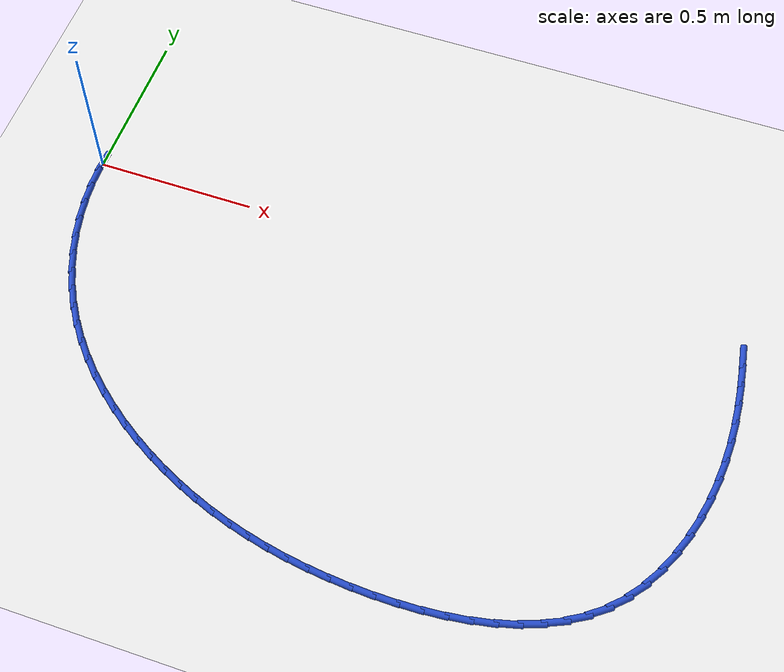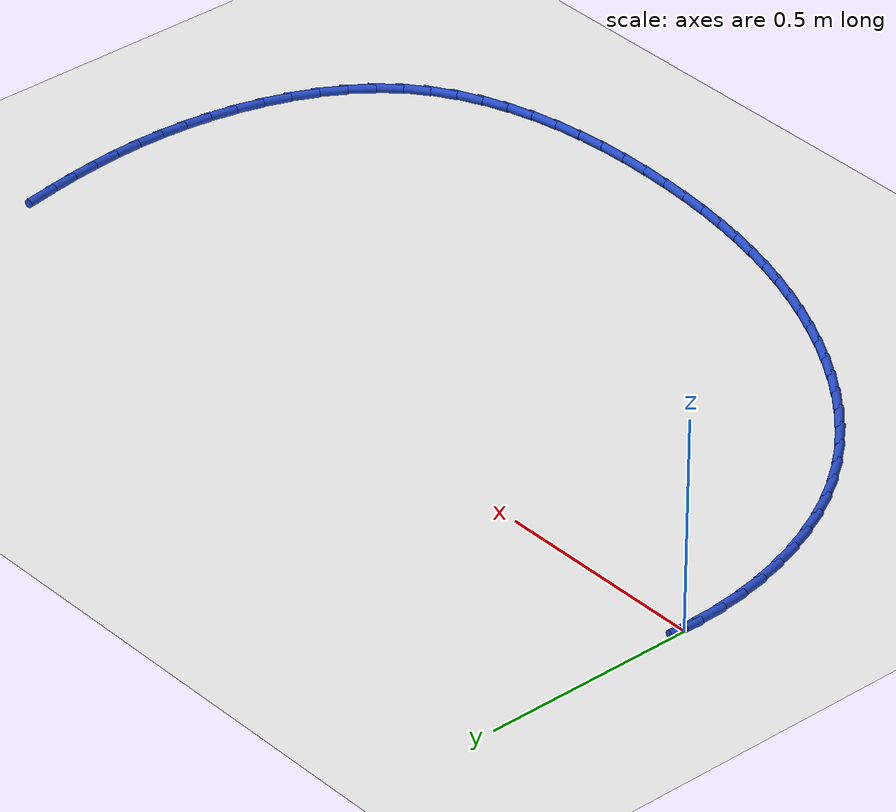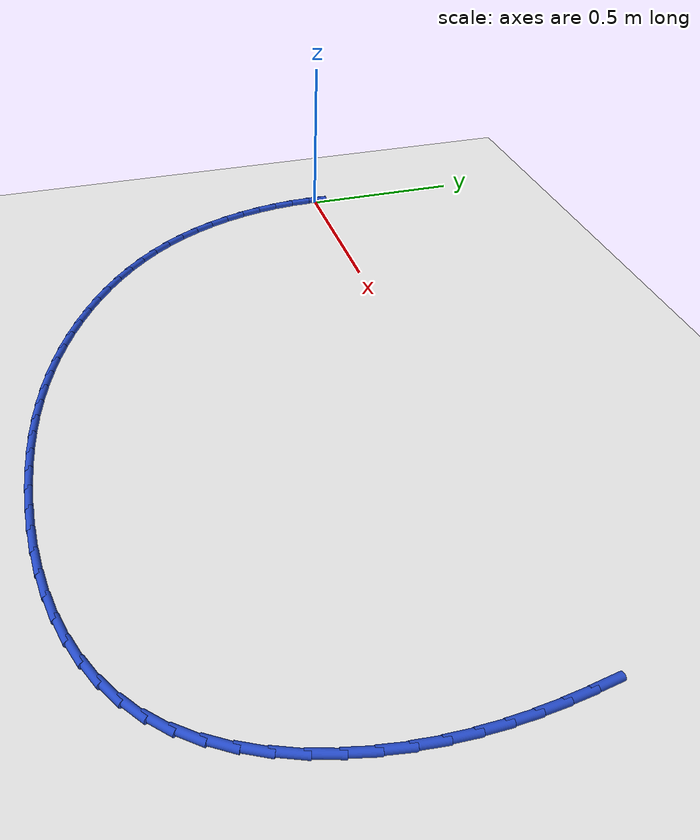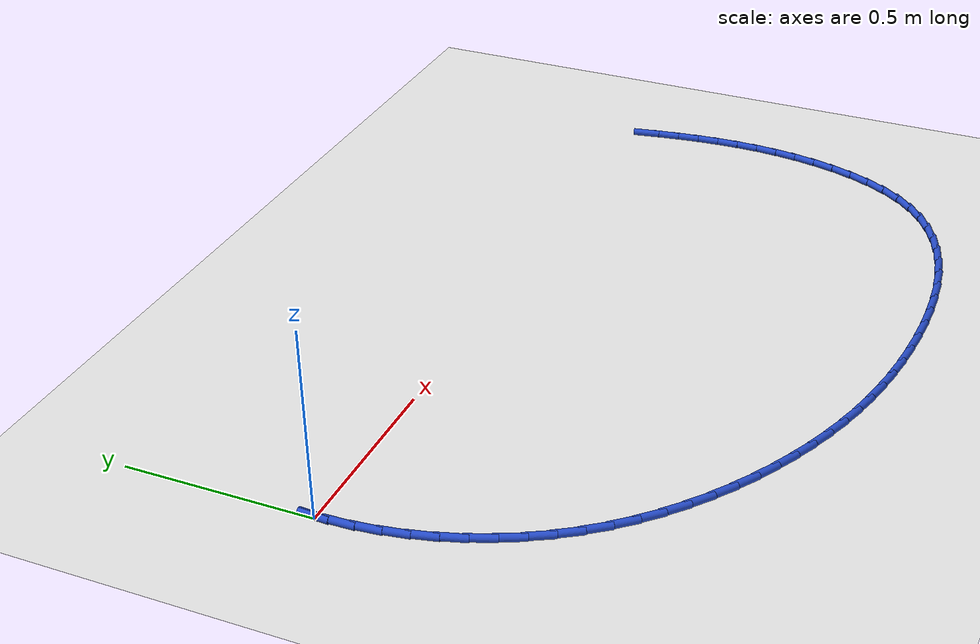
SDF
<sdf version="1.6">
 <world name="default">
  <model name="ground_plane">
   <static>1</static>
   <link name="link">
    <collision name="collision">
     <geometry><plane><normal>0 0 1</normal><size>100 100</size></plane></geometry>
     <surface><friction><ode><mu>100</mu><mu2>50</mu2></ode></friction></surface>
    </collision>
    <visual name="visual">
     <cast_shadows>0</cast_shadows>
     <geometry><plane><normal>0 0 1</normal><size>100 100</size></plane></geometry>
     <material>
      <script><uri>file://media/materials/scripts/gazebo.material</uri><name>Gazebo/WhiteGlow</name></script>
     </material>
    </visual>
   </link>
  </model>
  <model name="line">
   <link name="link_0">
    <pose>3.469446951953614e-18 4.163336342344337e-17 0.01 0 1.57 1.519151903157508</pose>
    <collision name="collision">
     <geometry><cylinder><radius>0.01</radius><length>0.08</length></cylinder></geometry>
    </collision>
    <visual name="visual">
     <material>
      <script><name>Gazebo/Blue</name><uri>file://media/materials/scripts/gazebo.material</uri></script>
     </material>
     <geometry><cylinder><radius>0.01</radius><length>0.08</length></cylinder></geometry>
    </visual>
   </link>
   <link name="link_56">
    <pose>2.0813644765098696 -0.032293044669119184 0.01 0 1.57 -1.4033744518919864</pose>
    <collision name="collision">
     <geometry><cylinder><radius>0.01</radius><length>0.08</length></cylinder></geometry>
    </collision>
    <visual name="visual">
     <material>
      <script><name>Gazebo/Blue</name><uri>file://media/materials/scripts/gazebo.material</uri></script>
     </material>
     <geometry><cylinder><radius>0.01</radius><length>0.08</length></cylinder></geometry>
    </visual>
   </link>
   <link name="link_57">
    <pose>2.0919609451666834 -0.09499259644784287 0.01 0 1.57 -1.434456066933796</pose>
    <collision name="collision">
     <geometry><cylinder><radius>0.01</radius><length>0.08</length></cylinder></geometry>
    </collision>
    <visual name="visual">
     <material>
      <script><name>Gazebo/Blue</name><uri>file://media/materials/scripts/gazebo.material</uri></script>
     </material>
     <geometry><cylinder><radius>0.01</radius><length>0.08</length></cylinder></geometry>
    </visual>
   </link>
   <link name="link_58">
    <pose>2.1005842954820397 -0.157848951546754 0.01 0 1.57 -1.4708276231403687</pose>
    <collision name="collision">
     <geometry><cylinder><radius>0.01</radius><length>0.08</length></cylinder></geometry>
    </collision>
    <visual name="visual">
     <material>
      <script><name>Gazebo/Blue</name><uri>file://media/materials/scripts/gazebo.material</uri></script>
     </material>
     <geometry><cylinder><radius>0.01</radius><length>0.08</length></cylinder></geometry>
    </visual>
   </link>
   <link name="link_59">
    <pose>2.10690619695537 -0.22087695312844224 0.01 0 1.57 -1.5124563428811304</pose>
    <collision name="collision">
     <geometry><cylinder><radius>0.01</radius><length>0.08</length></cylinder></geometry>
    </collision>
    <visual name="visual">
     <material>
      <script><name>Gazebo/Blue</name><uri>file://media/materials/scripts/gazebo.material</uri></script>
     </material>
     <geometry><cylinder><radius>0.01</radius><length>0.08</length></cylinder></geometry>
    </visual>
   </link>
   <link name="link_60">
    <pose>2.110598319086105 -0.28409144435549416 0.01 0 1.57 -1.559222251671802</pose>
    <collision name="collision">
     <geometry><cylinder><radius>0.01</radius><length>0.08</length></cylinder></geometry>
    </collision>
    <visual name="visual">
     <material>
      <script><name>Gazebo/Blue</name><uri>file://media/materials/scripts/gazebo.material</uri></script>
     </material>
     <geometry><cylinder><radius>0.01</radius><length>0.08</length></cylinder></geometry>
    </visual>
   </link>
   <link name="link_61">
    <pose>2.111332331373675 -0.34750726839049917 0.01 0 1.57 1.5307054853266904</pose>
    <collision name="collision">
     <geometry><cylinder><radius>0.01</radius><length>0.08</length></cylinder></geometry>
    </collision>
    <visual name="visual">
     <material>
      <script><name>Gazebo/Blue</name><uri>file://media/materials/scripts/gazebo.material</uri></script>
     </material>
     <geometry><cylinder><radius>0.01</radius><length>0.08</length></cylinder></geometry>
    </visual>
   </link>
   <link name="link_62">
    <pose>2.108779903317511 -0.411139268396044 0.01 0 1.57 1.474525674565768</pose>
    <collision name="collision">
     <geometry><cylinder><radius>0.01</radius><length>0.08</length></cylinder></geometry>
    </collision>
    <visual name="visual">
     <material>
      <script><name>Gazebo/Blue</name><uri>file://media/materials/scripts/gazebo.material</uri></script>
     </material>
     <geometry><cylinder><radius>0.01</radius><length>0.08</length></cylinder></geometry>
    </visual>
   </link>
   <link name="link_63">
    <pose>2.102612704417044 -0.4750022875347183 0.01 0 1.57 1.4143757358375824</pose>
    <collision name="collision">
     <geometry><cylinder><radius>0.01</radius><length>0.08</length></cylinder></geometry>
    </collision>
    <visual name="visual">
     <material>
      <script><name>Gazebo/Blue</name><uri>file://media/materials/scripts/gazebo.material</uri></script>
     </material>
     <geometry><cylinder><radius>0.01</radius><length>0.08</length></cylinder></geometry>
    </visual>
   </link>
   <link name="link_64">
    <pose>2.092503488305093 -0.5391027521874854 0.01 0 1.57 1.350394162600993</pose>
    <collision name="collision">
     <geometry><cylinder><radius>0.01</radius><length>0.08</length></cylinder></geometry>
    </collision>
    <visual name="visual">
     <material>
      <script><name>Gazebo/Blue</name><uri>file://media/materials/scripts/gazebo.material</uri></script>
     </material>
     <geometry><cylinder><radius>0.01</radius><length>0.08</length></cylinder></geometry>
    </visual>
   </link>
   <link name="link_65">
    <pose>2.0781755070070154 -0.6030550392449345 0.01 0 1.57 1.2809139242493253</pose>
    <collision name="collision">
     <geometry><cylinder><radius>0.01</radius><length>0.08</length></cylinder></geometry>
    </collision>
    <visual name="visual">
     <material>
      <script><name>Gazebo/Blue</name><uri>file://media/materials/scripts/gazebo.material</uri></script>
     </material>
     <geometry><cylinder><radius>0.01</radius><length>0.08</length></cylinder></geometry>
    </visual>
   </link>
   <link name="link_66">
    <pose>2.059422899929094 -0.6659231840884267 0.01 0 1.57 1.2037579310899715</pose>
    <collision name="collision">
     <geometry><cylinder><radius>0.01</radius><length>0.08</length></cylinder></geometry>
    </collision>
    <visual name="visual">
     <material>
      <script><name>Gazebo/Blue</name><uri>file://media/materials/scripts/gazebo.material</uri></script>
     </material>
     <geometry><cylinder><radius>0.01</radius><length>0.08</length></cylinder></geometry>
    </visual>
   </link>
   <link name="link_67">
    <pose>2.0360451160133253 -0.7267300009699622 0.01 0 1.57 1.116618856477621</pose>
    <collision name="collision">
     <geometry><cylinder><radius>0.01</radius><length>0.08</length></cylinder></geometry>
    </collision>
    <visual name="visual">
     <material>
      <script><name>Gazebo/Blue</name><uri>file://media/materials/scripts/gazebo.material</uri></script>
     </material>
     <geometry><cylinder><radius>0.01</radius><length>0.08</length></cylinder></geometry>
    </visual>
   </link>
   <link name="link_68">
    <pose>2.0078416042017038 -0.784498304141545 0.01 0 1.57 1.0171027766589378</pose>
    <collision name="collision">
     <geometry><cylinder><radius>0.01</radius><length>0.08</length></cylinder></geometry>
    </collision>
    <visual name="visual">
     <material>
      <script><name>Gazebo/Blue</name><uri>file://media/materials/scripts/gazebo.material</uri></script>
     </material>
     <geometry><cylinder><radius>0.01</radius><length>0.08</length></cylinder></geometry>
    </visual>
   </link>
   <link name="link_69">
    <pose>1.9746118134362267 -0.8382509078551756 0.01 0 1.57 0.9029858479439486</pose>
    <collision name="collision">
     <geometry><cylinder><radius>0.01</radius><length>0.08</length></cylinder></geometry>
    </collision>
    <visual name="visual">
     <material>
      <script><name>Gazebo/Blue</name><uri>file://media/materials/scripts/gazebo.material</uri></script>
     </material>
     <geometry><cylinder><radius>0.01</radius><length>0.08</length></cylinder></geometry>
    </visual>
   </link>
   <link name="link_70">
    <pose>1.9361551926588894 -0.8870106263628579 0.01 0 1.57 0.774132234895471</pose>
    <collision name="collision">
     <geometry><cylinder><radius>0.01</radius><length>0.08</length></cylinder></geometry>
    </collision>
    <visual name="visual">
     <material>
      <script><name>Gazebo/Blue</name><uri>file://media/materials/scripts/gazebo.material</uri></script>
     </material>
     <geometry><cylinder><radius>0.01</radius><length>0.08</length></cylinder></geometry>
    </visual>
   </link>
   <link name="link_71">
    <pose>1.892315042168467 -0.9298739404925832 0.01 0 1.57 0.6455950852215665</pose>
    <collision name="collision">
     <geometry><cylinder><radius>0.01</radius><length>0.08</length></cylinder></geometry>
    </collision>
    <visual name="visual">
     <material>
      <script><name>Gazebo/Blue</name><uri>file://media/materials/scripts/gazebo.material</uri></script>
     </material>
     <geometry><cylinder><radius>0.01</radius><length>0.08</length></cylinder></geometry>
    </visual>
   </link>
   <link name="link_72">
    <pose>1.8434005988117665 -0.966720065123117 0.01 0 1.57 0.5285092322321724</pose>
    <collision name="collision">
     <geometry><cylinder><radius>0.01</radius><length>0.08</length></cylinder></geometry>
    </collision>
    <visual name="visual">
     <material>
      <script><name>Gazebo/Blue</name><uri>file://media/materials/scripts/gazebo.material</uri></script>
     </material>
     <geometry><cylinder><radius>0.01</radius><length>0.08</length></cylinder></geometry>
    </visual>
   </link>
   <link name="link_73">
    <pose>1.7900021185263328 -0.9979003034726369 0.01 0 1.57 0.424194346019909</pose>
    <collision name="collision">
     <geometry><cylinder><radius>0.01</radius><length>0.08</length></cylinder></geometry>
    </collision>
    <visual name="visual">
     <material>
      <script><name>Gazebo/Blue</name><uri>file://media/materials/scripts/gazebo.material</uri></script>
     </material>
     <geometry><cylinder><radius>0.01</radius><length>0.08</length></cylinder></geometry>
    </visual>
   </link>
   <link name="link_74">
    <pose>1.7327137346985546 -1.0237724725459243 0.01 0 1.57 0.3325141851248264</pose>
    <collision name="collision">
     <geometry><cylinder><radius>0.01</radius><length>0.08</length></cylinder></geometry>
    </collision>
    <visual name="visual">
     <material>
      <script><name>Gazebo/Blue</name><uri>file://media/materials/scripts/gazebo.material</uri></script>
     </material>
     <geometry><cylinder><radius>0.01</radius><length>0.08</length></cylinder></geometry>
    </visual>
   </link>
   <link name="link_75">
    <pose>1.6721295807148244 -1.0446943893477587 0.01 0 1.57 0.2525196766876807</pose>
    <collision name="collision">
     <geometry><cylinder><radius>0.01</radius><length>0.08</length></cylinder></geometry>
    </collision>
    <visual name="visual">
     <material>
      <script><name>Gazebo/Blue</name><uri>file://media/materials/scripts/gazebo.material</uri></script>
     </material>
     <geometry><cylinder><radius>0.01</radius><length>0.08</length></cylinder></geometry>
    </visual>
   </link>
   <link name="link_76">
    <pose>1.6088437899615322 -1.0610238708829212 0.01 0 1.57 0.1828889434367442</pose>
    <collision name="collision">
     <geometry><cylinder><radius>0.01</radius><length>0.08</length></cylinder></geometry>
    </collision>
    <visual name="visual">
     <material>
      <script><name>Gazebo/Blue</name><uri>file://media/materials/scripts/gazebo.material</uri></script>
     </material>
     <geometry><cylinder><radius>0.01</radius><length>0.08</length></cylinder></geometry>
    </visual>
   </link>
   <link name="link_77">
    <pose>1.5434504958250717 -1.0731187341561927 0.01 0 1.57 0.12221658158559864</pose>
    <collision name="collision">
     <geometry><cylinder><radius>0.01</radius><length>0.08</length></cylinder></geometry>
    </collision>
    <visual name="visual">
     <material>
      <script><name>Gazebo/Blue</name><uri>file://media/materials/scripts/gazebo.material</uri></script>
     </material>
     <geometry><cylinder><radius>0.01</radius><length>0.08</length></cylinder></geometry>
    </visual>
   </link>
   <link name="link_78">
    <pose>1.4765438316918311 -1.0813367961723535 0.01 0 1.57 0.069170934551458</pose>
    <collision name="collision">
     <geometry><cylinder><radius>0.01</radius><length>0.08</length></cylinder></geometry>
    </collision>
    <visual name="visual">
     <material>
      <script><name>Gazebo/Blue</name><uri>file://media/materials/scripts/gazebo.material</uri></script>
     </material>
     <geometry><cylinder><radius>0.01</radius><length>0.08</length></cylinder></geometry>
    </visual>
   </link>
   <link name="link_79">
    <pose>1.4087179309482032 -1.0860358739361837 0.01 0 1.57 0.022562390196058733</pose>
    <collision name="collision">
     <geometry><cylinder><radius>0.01</radius><length>0.08</length></cylinder></geometry>
    </collision>
    <visual name="visual">
     <material>
      <script><name>Gazebo/Blue</name><uri>file://media/materials/scripts/gazebo.material</uri></script>
     </material>
     <geometry><cylinder><radius>0.01</radius><length>0.08</length></cylinder></geometry>
    </visual>
   </link>
   <link name="link_80">
    <pose>1.3405669269805787 -1.0875737844524644 0.01 0 1.57 -0.018639604883841185</pose>
    <collision name="collision">
     <geometry><cylinder><radius>0.01</radius><length>0.08</length></cylinder></geometry>
    </collision>
    <visual name="visual">
     <material>
      <script><name>Gazebo/Blue</name><uri>file://media/materials/scripts/gazebo.material</uri></script>
     </material>
     <geometry><cylinder><radius>0.01</radius><length>0.08</length></cylinder></geometry>
    </visual>
   </link>
   <link name="link_81">
    <pose>1.2726849531753488 -1.086308344725976 0.01 0 1.57 -0.05537903475353251</pose>
    <collision name="collision">
     <geometry><cylinder><radius>0.01</radius><length>0.08</length></cylinder></geometry>
    </collision>
    <visual name="visual">
     <material>
      <script><name>Gazebo/Blue</name><uri>file://media/materials/scripts/gazebo.material</uri></script>
     </material>
     <geometry><cylinder><radius>0.01</radius><length>0.08</length></cylinder></geometry>
    </visual>
   </link>
   <link name="link_82">
    <pose>1.2056587139544472 -1.0825926970887672 0.01 0 1.57 -0.09056376717121185</pose>
    <collision name="collision">
     <geometry><cylinder><radius>0.01</radius><length>0.08</length></cylinder></geometry>
    </collision>
    <visual name="visual">
     <material>
      <script><name>Gazebo/Blue</name><uri>file://media/materials/scripts/gazebo.material</uri></script>
     </material>
     <geometry><cylinder><radius>0.01</radius><length>0.08</length></cylinder></geometry>
    </visual>
   </link>
   <link name="link_83">
    <pose>1.139809154933516 -1.0766127552568223 0.01 0 1.57 -0.12712401185276284</pose>
    <collision name="collision">
     <geometry><cylinder><radius>0.01</radius><length>0.08</length></cylinder></geometry>
    </collision>
    <visual name="visual">
     <material>
      <script><name>Gazebo/Blue</name><uri>file://media/materials/scripts/gazebo.material</uri></script>
     </material>
     <geometry><cylinder><radius>0.01</radius><length>0.08</length></cylinder></geometry>
    </visual>
   </link>
   <link name="link_84">
    <pose>1.0751247601132126 -1.0683452316160003 0.01 0 1.57 -0.16514316726622105</pose>
    <collision name="collision">
     <geometry><cylinder><radius>0.01</radius><length>0.08</length></cylinder></geometry>
    </collision>
    <visual name="visual">
     <material>
      <script><name>Gazebo/Blue</name><uri>file://media/materials/scripts/gazebo.material</uri></script>
     </material>
     <geometry><cylinder><radius>0.01</radius><length>0.08</length></cylinder></geometry>
    </visual>
   </link>
   <link name="link_85">
    <pose>1.0115730339043927 -1.0577536371541827 0.01 0 1.57 -0.20449614115290776</pose>
    <collision name="collision">
     <geometry><cylinder><radius>0.01</radius><length>0.08</length></cylinder></geometry>
    </collision>
    <visual name="visual">
     <material>
      <script><name>Gazebo/Blue</name><uri>file://media/materials/scripts/gazebo.material</uri></script>
     </material>
     <geometry><cylinder><radius>0.01</radius><length>0.08</length></cylinder></geometry>
    </visual>
   </link>
   <link name="link_86">
    <pose>0.9491214807179167 -1.0448014828592527 0.01 0 1.57 -0.24502825134361433</pose>
    <collision name="collision">
     <geometry><cylinder><radius>0.01</radius><length>0.08</length></cylinder></geometry>
    </collision>
    <visual name="visual">
     <material>
      <script><name>Gazebo/Blue</name><uri>file://media/materials/scripts/gazebo.material</uri></script>
     </material>
     <geometry><cylinder><radius>0.01</radius><length>0.08</length></cylinder></geometry>
    </visual>
   </link>
   <link name="link_87">
    <pose>0.8877376049646407 -1.0294522797190921 0.01 0 1.57 -0.2865565604834602</pose>
    <collision name="collision">
     <geometry><cylinder><radius>0.01</radius><length>0.08</length></cylinder></geometry>
    </collision>
    <visual name="visual">
     <material>
      <script><name>Gazebo/Blue</name><uri>file://media/materials/scripts/gazebo.material</uri></script>
     </material>
     <geometry><cylinder><radius>0.01</radius><length>0.08</length></cylinder></geometry>
    </visual>
   </link>
   <link name="link_88">
    <pose>0.8273889110554251 -1.0116695387215848 0.01 0 1.57 -0.3288727816091585</pose>
    <collision name="collision">
     <geometry><cylinder><radius>0.01</radius><length>0.08</length></cylinder></geometry>
    </collision>
    <visual name="visual">
     <material>
      <script><name>Gazebo/Blue</name><uri>file://media/materials/scripts/gazebo.material</uri></script>
     </material>
     <geometry><cylinder><radius>0.01</radius><length>0.08</length></cylinder></geometry>
    </visual>
   </link>
   <link name="link_89">
    <pose>0.7680429034011264 -0.9914167708546123 0.01 0 1.57 -0.3717477516619639</pose>
    <collision name="collision">
     <geometry><cylinder><radius>0.01</radius><length>0.08</length></cylinder></geometry>
    </collision>
    <visual name="visual">
     <material>
      <script><name>Gazebo/Blue</name><uri>file://media/materials/scripts/gazebo.material</uri></script>
     </material>
     <geometry><cylinder><radius>0.01</radius><length>0.08</length></cylinder></geometry>
    </visual>
   </link>
   <link name="link_90">
    <pose>0.7096670864126041 -0.9686574871060577 0.01 0 1.57 -0.41493730353743224</pose>
    <collision name="collision">
     <geometry><cylinder><radius>0.01</radius><length>0.08</length></cylinder></geometry>
    </collision>
    <visual name="visual">
     <material>
      <script><name>Gazebo/Blue</name><uri>file://media/materials/scripts/gazebo.material</uri></script>
     </material>
     <geometry><cylinder><radius>0.01</radius><length>0.08</length></cylinder></geometry>
    </visual>
   </link>
   <link name="link_91">
    <pose>0.6522289645007155 -0.9433551984638036 0.01 0 1.57 -0.45818920078460534</pose>
    <collision name="collision">
     <geometry><cylinder><radius>0.01</radius><length>0.08</length></cylinder></geometry>
    </collision>
    <visual name="visual">
     <material>
      <script><name>Gazebo/Blue</name><uri>file://media/materials/scripts/gazebo.material</uri></script>
     </material>
     <geometry><cylinder><radius>0.01</radius><length>0.08</length></cylinder></geometry>
    </visual>
   </link>
   <link name="link_92">
    <pose>0.5956960420763198 -0.9154734159157321 0.01 0 1.57 -0.5014433695759702</pose>
    <collision name="collision">
     <geometry><cylinder><radius>0.01</radius><length>0.08</length></cylinder></geometry>
    </collision>
    <visual name="visual">
     <material>
      <script><name>Gazebo/Blue</name><uri>file://media/materials/scripts/gazebo.material</uri></script>
     </material>
     <geometry><cylinder><radius>0.01</radius><length>0.08</length></cylinder></geometry>
    </visual>
   </link>
   <link name="link_93">
    <pose>0.5400660550814879 -0.8849782748886693 0.01 0 1.57 -0.5460505553966489</pose>
    <collision name="collision">
     <geometry><cylinder><radius>0.01</radius><length>0.08</length></cylinder></geometry>
    </collision>
    <visual name="visual">
     <material>
      <script><name>Gazebo/Blue</name><uri>file://media/materials/scripts/gazebo.material</uri></script>
     </material>
     <geometry><cylinder><radius>0.01</radius><length>0.08</length></cylinder></geometry>
    </visual>
   </link>
   <link name="link_94">
    <pose>0.4855590212977588 -0.8518552073879584 0.01 0 1.57 -0.5929485884116205</pose>
    <collision name="collision">
     <geometry><cylinder><radius>0.01</radius><length>0.08</length></cylinder></geometry>
    </collision>
    <visual name="visual">
     <material>
      <script><name>Gazebo/Blue</name><uri>file://media/materials/scripts/gazebo.material</uri></script>
     </material>
     <geometry><cylinder><radius>0.01</radius><length>0.08</length></cylinder></geometry>
    </visual>
   </link>
   <link name="link_95">
    <pose>0.4324941384078053 -0.8160982553564623 0.01 0 1.57 -0.6424954722099806</pose>
    <collision name="collision">
     <geometry><cylinder><radius>0.01</radius><length>0.08</length></cylinder></geometry>
    </collision>
    <visual name="visual">
     <material>
      <script><name>Gazebo/Blue</name><uri>file://media/materials/scripts/gazebo.material</uri></script>
     </material>
     <geometry><cylinder><radius>0.01</radius><length>0.08</length></cylinder></geometry>
    </visual>
   </link>
   <link name="link_96">
    <pose>0.3811910624140882 -0.7777015005243885 0.01 0 1.57 -0.6950315381374071</pose>
    <collision name="collision">
     <geometry><cylinder><radius>0.01</radius><length>0.08</length></cylinder></geometry>
    </collision>
    <visual name="visual">
     <material>
      <script><name>Gazebo/Blue</name><uri>file://media/materials/scripts/gazebo.material</uri></script>
     </material>
     <geometry><cylinder><radius>0.01</radius><length>0.08</length></cylinder></geometry>
    </visual>
   </link>
   <link name="link_97">
    <pose>0.33196944931906613 -0.7366590246219425 0.01 0 1.57 -0.7508718412085506</pose>
    <collision name="collision">
     <geometry><cylinder><radius>0.01</radius><length>0.08</length></cylinder></geometry>
    </collision>
    <visual name="visual">
     <material>
      <script><name>Gazebo/Blue</name><uri>file://media/materials/scripts/gazebo.material</uri></script>
     </material>
     <geometry><cylinder><radius>0.01</radius><length>0.08</length></cylinder></geometry>
    </visual>
   </link>
   <link name="link_98">
    <pose>0.2851489551251979 -0.6929649093793305 0.01 0 1.57 -0.8102898581402441</pose>
    <collision name="collision">
     <geometry><cylinder><radius>0.01</radius><length>0.08</length></cylinder></geometry>
    </collision>
    <visual name="visual">
     <material>
      <script><name>Gazebo/Blue</name><uri>file://media/materials/scripts/gazebo.material</uri></script>
     </material>
     <geometry><cylinder><radius>0.01</radius><length>0.08</length></cylinder></geometry>
    </visual>
   </link>
   <link name="link_99">
    <pose>0.2410492358349438 -0.6466132365267597 0.01 0 1.57 -0.8734949422601458</pose>
    <collision name="collision">
     <geometry><cylinder><radius>0.01</radius><length>0.08</length></cylinder></geometry>
    </collision>
    <visual name="visual">
     <material>
      <script><name>Gazebo/Blue</name><uri>file://media/materials/scripts/gazebo.material</uri></script>
     </material>
     <geometry><cylinder><radius>0.01</radius><length>0.08</length></cylinder></geometry>
    </visual>
   </link>
   <link name="link_100">
    <pose>0.19998994745076226 -0.5975980877944352 0.01 0 1.57 -0.9406038336672466</pose>
    <collision name="collision">
     <geometry><cylinder><radius>0.01</radius><length>0.08</length></cylinder></geometry>
    </collision>
    <visual name="visual">
     <material>
      <script><name>Gazebo/Blue</name><uri>file://media/materials/scripts/gazebo.material</uri></script>
     </material>
     <geometry><cylinder><radius>0.01</radius><length>0.08</length></cylinder></geometry>
    </visual>
   </link>
   <link name="link_101">
    <pose>0.16229074597511337 -0.5459135449125644 0.01 0 1.57 -1.010892492701405</pose>
    <collision name="collision">
     <geometry><cylinder><radius>0.01</radius><length>0.08</length></cylinder></geometry>
    </collision>
    <visual name="visual">
     <material>
      <script><name>Gazebo/Blue</name><uri>file://media/materials/scripts/gazebo.material</uri></script>
     </material>
     <geometry><cylinder><radius>0.01</radius><length>0.08</length></cylinder></geometry>
    </visual>
   </link>
   <link name="link_102">
    <pose>0.12824335676377813 -0.491595511949483 0.01 0 1.57 -1.0805656770019936</pose>
    <collision name="collision">
     <geometry><cylinder><radius>0.01</radius><length>0.08</length></cylinder></geometry>
    </collision>
    <visual name="visual">
     <material>
      <script><name>Gazebo/Blue</name><uri>file://media/materials/scripts/gazebo.material</uri></script>
     </material>
     <geometry><cylinder><radius>0.01</radius><length>0.08</length></cylinder></geometry>
    </visual>
   </link>
   <link name="link_103">
    <pose>0.09798880402442264 -0.4349055474113203 0.01 0 1.57 -1.1487182268931864</pose>
    <collision name="collision">
     <geometry><cylinder><radius>0.01</radius><length>0.08</length></cylinder></geometry>
    </collision>
    <visual name="visual">
     <material>
      <script><name>Gazebo/Blue</name><uri>file://media/materials/scripts/gazebo.material</uri></script>
     </material>
     <geometry><cylinder><radius>0.01</radius><length>0.08</length></cylinder></geometry>
    </visual>
   </link>
   <link name="link_104">
    <pose>0.07161751314580618 -0.37618097464193434 0.01 0 1.57 -1.2158113297786157</pose>
    <collision name="collision">
     <geometry><cylinder><radius>0.01</radius><length>0.08</length></cylinder></geometry>
    </collision>
    <visual name="visual">
     <material>
      <script><name>Gazebo/Blue</name><uri>file://media/materials/scripts/gazebo.material</uri></script>
     </material>
     <geometry><cylinder><radius>0.01</radius><length>0.08</length></cylinder></geometry>
    </visual>
   </link>
   <link name="link_105">
    <pose>0.04921987221811445 -0.3157591728347204 0.01 0 1.57 -1.2823253652377318</pose>
    <collision name="collision">
     <geometry><cylinder><radius>0.01</radius><length>0.08</length></cylinder></geometry>
    </collision>
    <visual name="visual">
     <material>
      <script><name>Gazebo/Blue</name><uri>file://media/materials/scripts/gazebo.material</uri></script>
     </material>
     <geometry><cylinder><radius>0.01</radius><length>0.08</length></cylinder></geometry>
    </visual>
   </link>
   <link name="link_106">
    <pose>0.030886269331532018 -0.2539775211830706 0.01 0 1.57 -1.3487507739061904</pose>
    <collision name="collision">
     <geometry><cylinder><radius>0.01</radius><length>0.08</length></cylinder></geometry>
    </collision>
    <visual name="visual">
     <material>
      <script><name>Gazebo/Blue</name><uri>file://media/materials/scripts/gazebo.material</uri></script>
     </material>
     <geometry><cylinder><radius>0.01</radius><length>0.08</length></cylinder></geometry>
    </visual>
   </link>
   <link name="link_107">
    <pose>0.01670709257624443 -0.19117339888038049 0.01 0 1.57 -1.415581679492031</pose>
    <collision name="collision">
     <geometry><cylinder><radius>0.01</radius><length>0.08</length></cylinder></geometry>
    </collision>
    <visual name="visual">
     <material>
      <script><name>Gazebo/Blue</name><uri>file://media/materials/scripts/gazebo.material</uri></script>
     </material>
     <geometry><cylinder><radius>0.01</radius><length>0.08</length></cylinder></geometry>
    </visual>
   </link>
   <link name="link_108">
    <pose>0.006772730042436403 -0.12768418512004234 0.01 0 1.57 -1.4833098488543743</pose>
    <collision name="collision">
     <geometry><cylinder><radius>0.01</radius><length>0.08</length></cylinder></geometry>
    </collision>
    <visual name="visual">
     <material>
      <script><name>Gazebo/Blue</name><uri>file://media/materials/scripts/gazebo.material</uri></script>
     </material>
     <geometry><cylinder><radius>0.01</radius><length>0.08</length></cylinder></geometry>
    </visual>
   </link>
   <link name="link_109">
    <pose>0.0011735698202932875 -0.06384725909545147 0.01 0 1.57 -1.5524175005568766</pose>
    <collision name="collision">
     <geometry><cylinder><radius>0.01</radius><length>0.08</length></cylinder></geometry>
    </collision>
    <visual name="visual">
     <material>
      <script><name>Gazebo/Blue</name><uri>file://media/materials/scripts/gazebo.material</uri></script>
     </material>
     <geometry><cylinder><radius>0.01</radius><length>0.08</length></cylinder></geometry>
    </visual>
   </link>
   <link name="link_110">
    <pose>2.42861286636753e-17 -1.249000902703301e-16 0.01 0 1.57 1.5182252036189163</pose>
    <collision name="collision">
     <geometry><cylinder><radius>0.01</radius><length>0.08</length></cylinder></geometry>
    </collision>
    <visual name="visual">
     <material>
      <script><name>Gazebo/Blue</name><uri>file://media/materials/scripts/gazebo.material</uri></script>
     </material>
     <geometry><cylinder><radius>0.01</radius><length>0.08</length></cylinder></geometry>
    </visual>
   </link>
  </model>
 </world>
</sdf>
